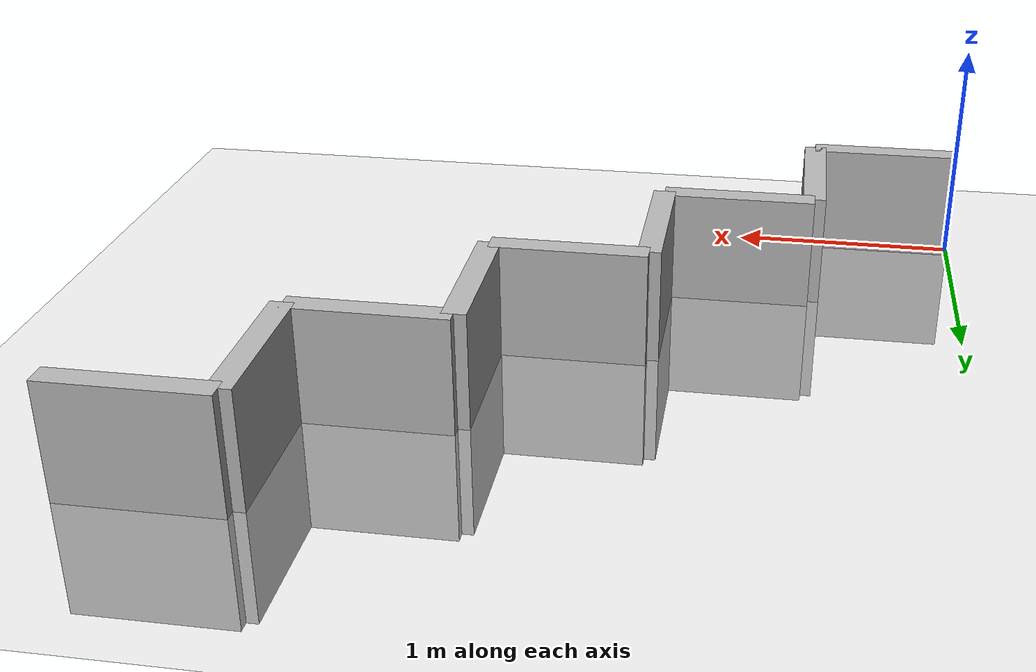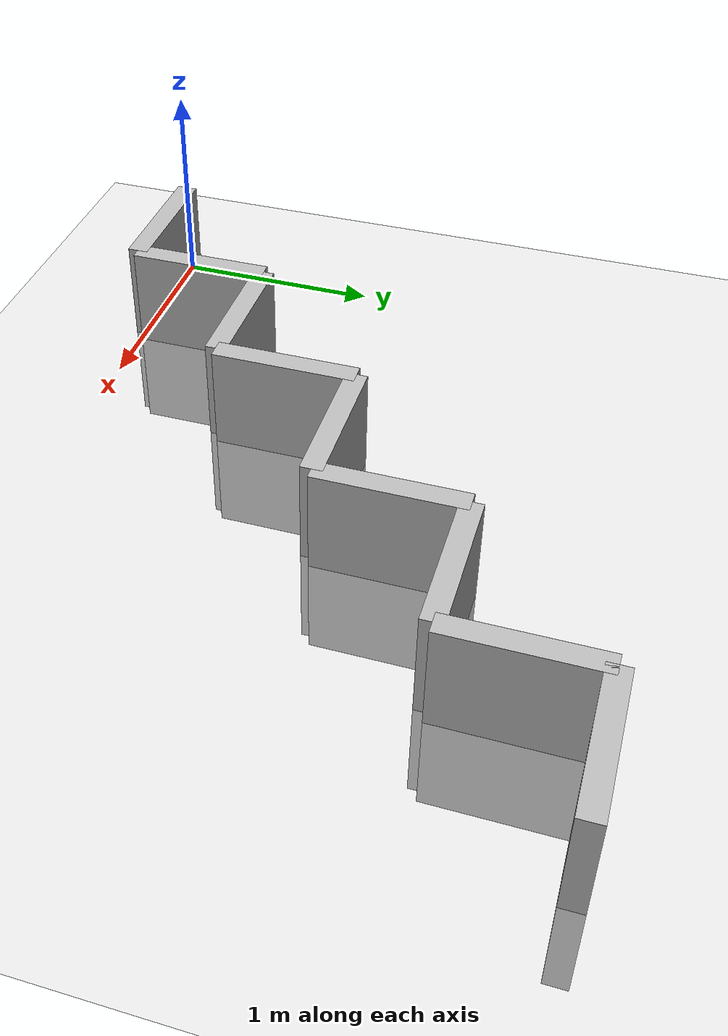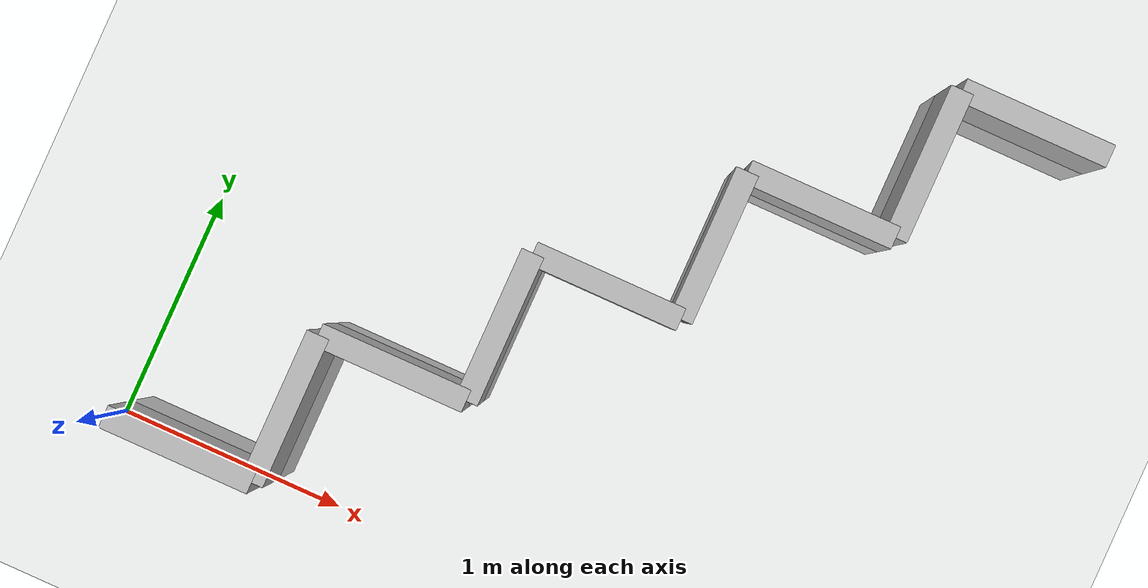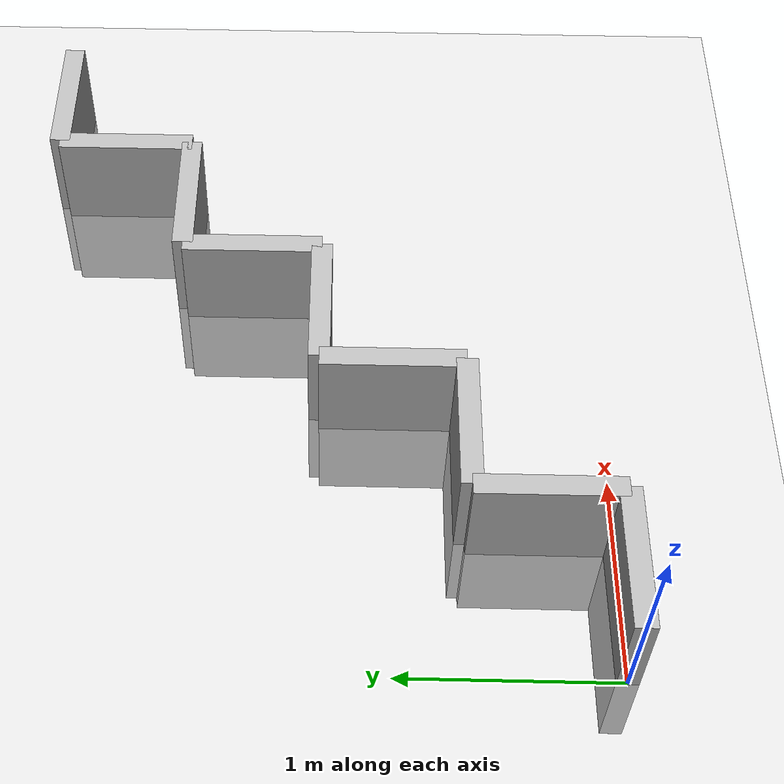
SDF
<?xml version="1.0" ?>
<sdf version="1.6">
  <world name="default">
    <include>
      <uri>model://ground_plane</uri>
    </include>
    <include>
      <uri>model://sun</uri>
    </include>

    <model name="wall_0">
      <static>true</static>
      <link name="link">
        <pose>0.3333333333333333 0 0 0 0 0</pose>
        <collision name="collision">
          <geometry>
            <box>
              <size>0.6666666666666666 0.1 1.0</size>
            </box>
          </geometry>
        </collision>
        <visual name="visual">
          <geometry>
            <box>
              <size>0.6666666666666666 0.1 1.0</size>
            </box>
          </geometry>
        </visual>
      </link>
    </model>

    <model name="wall_1">
      <static>true</static>
      <link name="link">
        <pose>0.6666666666666666 0.3333333333333333 0 0 0 1.57</pose>
        <collision name="collision">
          <geometry>
            <box>
              <size>0.6666666666666666 0.1 1.0</size>
            </box>
          </geometry>
        </collision>
        <visual name="visual">
          <geometry>
            <box>
              <size>0.6666666666666666 0.1 1.0</size>
            </box>
          </geometry>
        </visual>
      </link>
    </model>

    <model name="wall_2">
      <static>true</static>
      <link name="link">
        <pose>1.0 0.6666666666666666 0 0 0 0</pose>
        <collision name="collision">
          <geometry>
            <box>
              <size>0.6666666666666666 0.1 1.0</size>
            </box>
          </geometry>
        </collision>
        <visual name="visual">
          <geometry>
            <box>
              <size>0.6666666666666666 0.1 1.0</size>
            </box>
          </geometry>
        </visual>
      </link>
    </model>

    <model name="wall_3">
      <static>true</static>
      <link name="link">
        <pose>1.3333333333333333 1.0 0 0 0 1.57</pose>
        <collision name="collision">
          <geometry>
            <box>
              <size>0.6666666666666666 0.1 1.0</size>
            </box>
          </geometry>
        </collision>
        <visual name="visual">
          <geometry>
            <box>
              <size>0.6666666666666666 0.1 1.0</size>
            </box>
          </geometry>
        </visual>
      </link>
    </model>

    <model name="wall_4">
      <static>true</static>
      <link name="link">
        <pose>1.6666666666666665 1.3333333333333333 0 0 0 0</pose>
        <collision name="collision">
          <geometry>
            <box>
              <size>0.6666666666666666 0.1 1.0</size>
            </box>
          </geometry>
        </collision>
        <visual name="visual">
          <geometry>
            <box>
              <size>0.6666666666666666 0.1 1.0</size>
            </box>
          </geometry>
        </visual>
      </link>
    </model>

    <model name="wall_5">
      <static>true</static>
      <link name="link">
        <pose>1.9999999999999998 1.6666666666666665 0 0 0 1.57</pose>
        <collision name="collision">
          <geometry>
            <box>
              <size>0.6666666666666666 0.1 1.0</size>
            </box>
          </geometry>
        </collision>
        <visual name="visual">
          <geometry>
            <box>
              <size>0.6666666666666666 0.1 1.0</size>
            </box>
          </geometry>
        </visual>
      </link>
    </model>

    <model name="wall_6">
      <static>true</static>
      <link name="link">
        <pose>2.333333333333333 1.9999999999999998 0 0 0 0</pose>
        <collision name="collision">
          <geometry>
            <box>
              <size>0.6666666666666666 0.1 1.0</size>
            </box>
          </geometry>
        </collision>
        <visual name="visual">
          <geometry>
            <box>
              <size>0.6666666666666666 0.1 1.0</size>
            </box>
          </geometry>
        </visual>
      </link>
    </model>

    <model name="wall_7">
      <static>true</static>
      <link name="link">
        <pose>2.6666666666666665 2.333333333333333 0 0 0 1.57</pose>
        <collision name="collision">
          <geometry>
            <box>
              <size>0.6666666666666666 0.1 1.0</size>
            </box>
          </geometry>
        </collision>
        <visual name="visual">
          <geometry>
            <box>
              <size>0.6666666666666666 0.1 1.0</size>
            </box>
          </geometry>
        </visual>
      </link>
    </model>

    <model name="wall_8">
      <static>true</static>
      <link name="link">
        <pose>3.0 2.6666666666666665 0 0 0 0</pose>
        <collision name="collision">
          <geometry>
            <box>
              <size>0.6666666666666666 0.1 1.0</size>
            </box>
          </geometry>
        </collision>
        <visual name="visual">
          <geometry>
            <box>
              <size>0.6666666666666666 0.1 1.0</size>
            </box>
          </geometry>
        </visual>
      </link>
    </model>

  </world>
</sdf>
